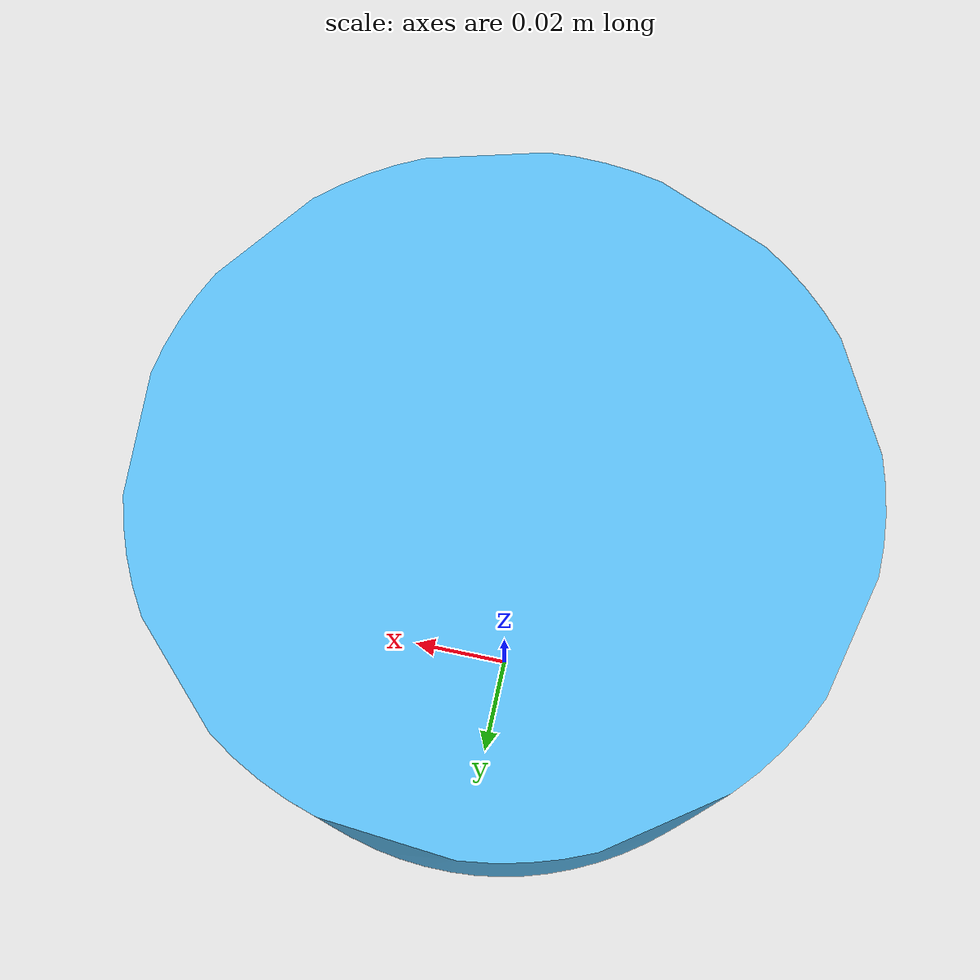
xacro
<?xml version="1.0" ?>
<robot name="onrobotsg_b" xmlns:xacro="http://ros.org/wiki/xacro">
    <xacro:include filename="$(find onrobotsg_description)/urdf/sgb/onrobotsg_b_macro.urdf.xacro" />

    <!-- base fixed link  -->
    <link name="gripper_adapter_link">
    </link>

    <xacro:onrobotsg_b prefix="" parent="gripper_adapter_link" >
        <origin xyz="0 0 0" rpy="0 0 0"/>
    </xacro:onrobotsg_b>
</robot>

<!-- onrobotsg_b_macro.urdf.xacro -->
<robot name="onrobotsg" xmlns:xacro="http://ros.org/wiki/xacro">

	<xacro:macro name="onrobotsg_b" params="prefix parent *origin">

		<joint name="${prefix}onrobotsg_base_joint" type="fixed">
			<parent link="${parent}" />
			<child link="${prefix}onrobotsg_base_link" />
			<xacro:insert_block name="origin" />
		</joint>

		<link name="${prefix}onrobotsg_base_link">

			<visual> <!-- Gripper body -->
				<geometry>
					<mesh filename="package://onrobotsg_description/meshes/visual/sgb_full.STL"
						scale="0.001 0.001 0.001" />
				</geometry>
			</visual>
			<collision>
				<geometry>
					<mesh filename="package://onrobotsg_description/meshes/collision/plate_and_hub.STL"
						scale="0.001 0.001 0.001" />
				</geometry>
			</collision>
			<inertial>
				<mass value="0.636951" />
				<origin xyz="0.0 0.0 0.0" />
				<inertia ixx="0.000380" ixy="0.000000" ixz="0.000000"
					iyx="0.000000" iyy="0.001110" iyz="0.000000"
					izx="0.000000" izy="0.000000" izz="0.001171" />
			</inertial>
		</link>

	</xacro:macro>
</robot>
